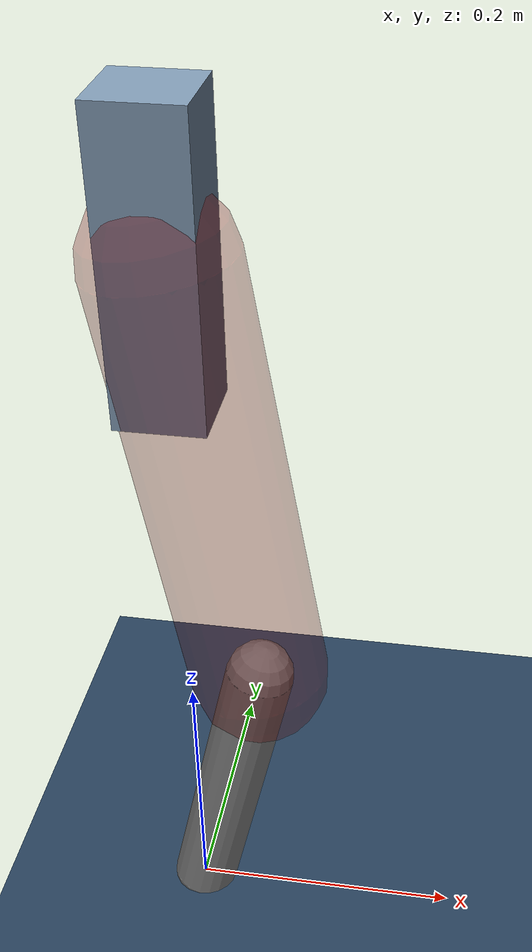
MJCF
<mujoco model="Hopper2D">
	<compiler inertiafromgeom="true" angle="radian" />
	<option timestep="0.001" integrator="implicit" cone="elliptic" solver="Newton" tolerance="1e-10" />

	<default>
		<geom contype="1" conaffinity="1" condim="3" friction="2 0.005 0.0001" solref="0.005 1" />
		<joint limited="true" damping="0.1" />
	</default>

	<asset>
		<texture name="skybox" type="skybox" builtin="gradient" rgb1=".4 .6 .8" rgb2="0 0 0" width="800" height="800" />
		<texture name="grid" type="2d" builtin="checker" rgb1=".1 .2 .3" rgb2=".2 .3 .4" width="300" height="300" mark="edge" markrgb=".2 .3 .4" />
		<material name="ground" texture="grid" texrepeat="1 1" texuniform="true" reflectance="0.1" />
		<material name="leg" rgba="0.5 0.6 0.7 1" />
	</asset>

	<worldbody>

		<geom name="floor" type="plane" size="5 5 0.25" material="ground" />

		<light directional="false" diffuse="0.8 0.8 0.8" specular="0.3 0.3 0.3" pos="0 0 2" dir="0 0 -1" />
		<light mode="targetbodycom" target="base" directional="false" diffuse="0.8 0.8 0.8" specular="0.3 0.3 0.3" pos="0 0 2" dir="0 0 -1" />

		<camera name="fixed" pos="0 -2 1" xyaxes="1 0 0 0 0 1" />
		<camera name="tracking" mode="trackcom" pos="0 -3 1" />

		<body name="root" pos="0 0 0.5415507604387994">
			<joint name="slide_x" type="slide" axis="1 0 0" range="-100 100" />
			<joint name="slide_z" type="slide" axis="0 0 1" range="0 10" />

			<body name="base" pos="0 0 0">
				<geom name="torso" type="box" size="0.03 0.03 0.1" mass="2.7359999999999998" material="leg" />

				<body name="link1" pos="0 0 0" euler="0 1.4085593855287164 0">
					<joint type="hinge" axis="0 -1 0" pos="0 0 0" name="hinge1" limited="true" range="-3.14 3.14" stiffness="0" damping="0.1" />
					<geom name="thigh" type="capsule" fromto="0 0 0 0.3194071525984256 0 0" size="0.05" rgba="0.5 0 0 0.3" mass="1.0415993120157492" />

					<body name="link2" pos="0.3194071525984256 0 0" euler="0 0.3863527756734252 0">
						<joint type="hinge" axis="0 -1 0" pos="0 0 0" name="hinge2" limited="true" range="-3.14 3.14" stiffness="0" damping="0.1" />
						<geom name="shank" type="capsule" fromto="0 0 0 0.23214360784037377 0 0" size="0.025" mass="0.42772924705633636" />

					</body>
				</body>
			</body>
		</body>
	</worldbody>

	<actuator>
		<motor name="torque1" joint="hinge1" ctrlrange="-115.9076384774603 115.9076384774603" ctrllimited="true" gear="1" />
		<motor name="torque2" joint="hinge2" ctrlrange="-94.65980304533873 94.65980304533873" ctrllimited="true" gear="1" />
	</actuator>
</mujoco>
